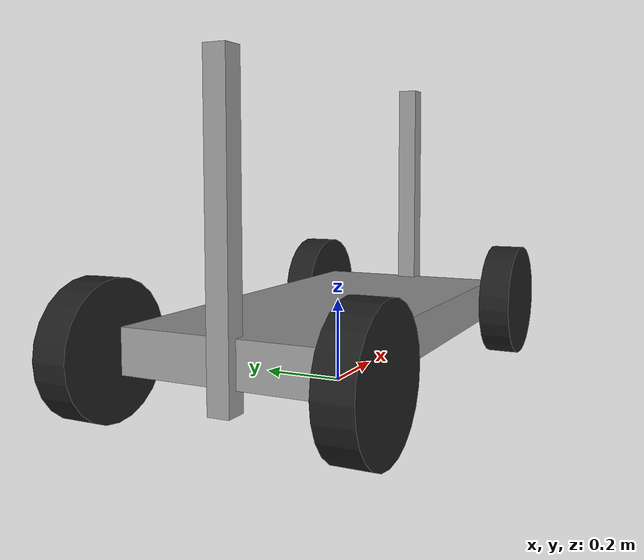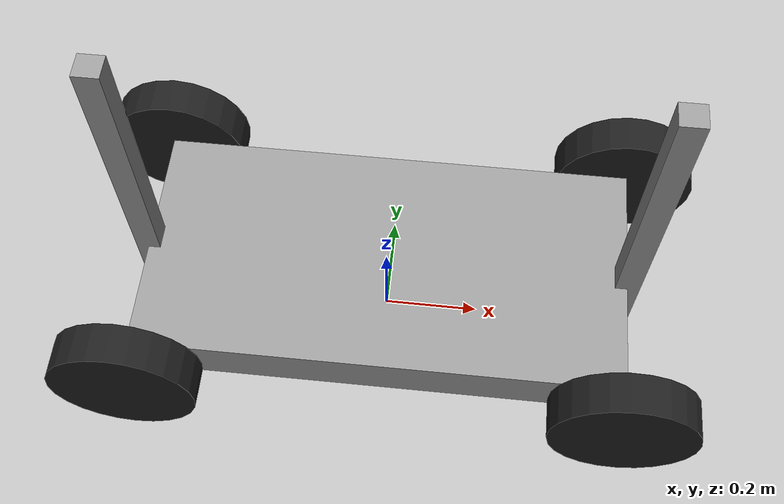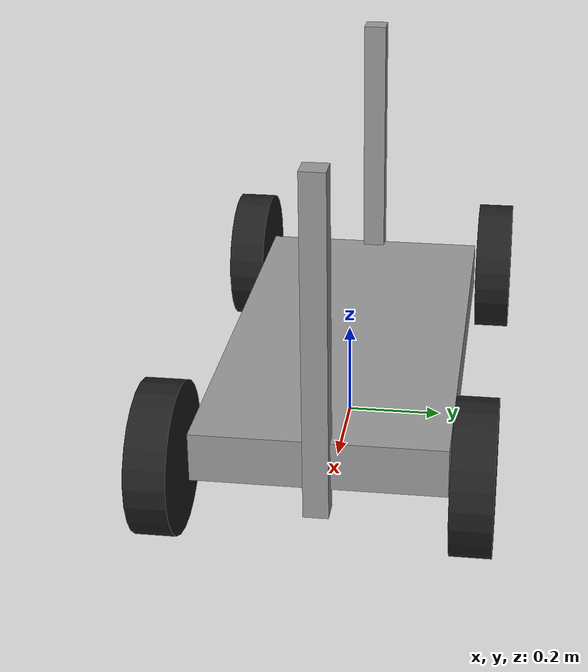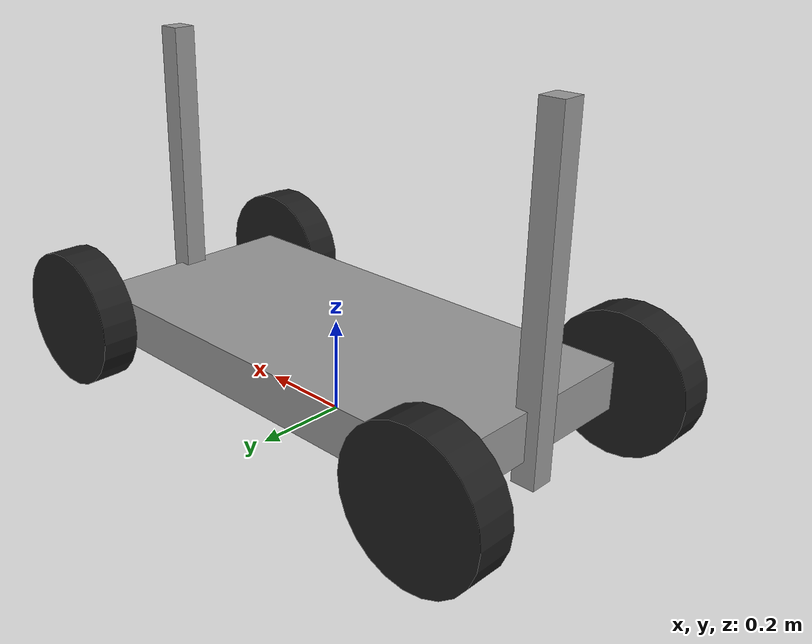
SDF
<?xml version="1.0" ?>

<sdf version="1.5">
  <model name="cart_front_steer">
    <link name="chassis">
      <pose>0 0 0.15  0 0 0</pose>
      <inertial>
        <pose>0.1 0 0  0 0 0</pose>
        <mass>10</mass>
        <inertia>
          <ixx>0.21666666666666667</ixx>
          <iyy>0.8416666666666667</iyy>
          <izz>1.0416666666666667</izz>
          <ixy>0</ixy>
          <ixz>0</ixz>
          <iyz>0</iyz>
        </inertia>
      </inertial>
      <collision name="collision">
        <geometry>
          <box>
            <size>1.0 0.5 0.1</size>
          </box>
        </geometry>
      </collision>
      <visual name="visual">
        <geometry>
          <box>
            <size>1.0 0.5 0.1</size>
          </box>
        </geometry>
        <material>
          <script>
            <uri>file://media/materials/scripts/gazebo.material</uri>
            <name>Gazebo/Grey</name>
          </script>
        </material>
      </visual>
    </link>

    <link name="rod">
      <pose>0.5 0.0 0.4  0 0 0 </pose>
      <inertial>
        <mass>2</mass>
        <inertia>
          <ixx> 0.08208333333333</ixx>
          <iyy> 0.08208333333333/</iyy>
          <izz> 0.00083333333333</izz>
          <ixy>0</ixy>
          <ixz>0</ixz>
          <iyz>0</iyz>
        </inertia>
      </inertial>
      <collision name="collision">
        <geometry>
          <box>
            <size> 0.05 0.05 0.7 </size>
          </box>
        </geometry>
      </collision>
      <visual name="visual">
        <geometry>
          <box>
            <size> 0.05 0.05 0.7 </size>
          </box>
        </geometry>
        <material>
          <script>
            <uri>file://media/materials/scripts/gazebo.material</uri>
            <name>Gazebo/Grey</name>
          </script>
        </material>
      </visual>
    </link>

    <joint name="rod_to_chassis" type="fixed">
      <parent>chassis</parent>
      <child>rod</child>
    </joint>

    <!-- second rod -->

    <link name="second_rod">
      <pose>-0.5 0.0 0.4  0 0 0 </pose>
      <inertial>
        <mass>2</mass>
        <inertia>
          <ixx> 0.08208333333333</ixx>
          <iyy> 0.08208333333333/</iyy>
          <izz> 0.00083333333333</izz>
          <ixy>0</ixy>
          <ixz>0</ixz>
          <iyz>0</iyz>
        </inertia>
      </inertial>
      <collision name="collision">
        <geometry>
          <box>
            <size> 0.05 0.05 0.7 </size>
          </box>
        </geometry>
      </collision>
      <visual name="visual">
        <geometry>
          <box>
            <size> 0.05 0.05 0.7 </size>
          </box>
        </geometry>
        <material>
          <script>
            <uri>file://media/materials/scripts/gazebo.material</uri>
            <name>Gazebo/Grey</name>
          </script>
        </material>
      </visual>
    </link>

    <joint name="second_rod_to_chassis" type="fixed">
      <parent>chassis</parent>
      <child>second_rod</child>
    </joint>

    <link name="wheel_front_left">
      <pose>0.5 0.298 0.15  -1.5707963267948966 -0.08726646259971647 0</pose>
      <inertial>
        <mass>0.5</mass>
        <inertia>
          <ixx>0.0030791666666666667</ixx>
          <iyy>0.0030791666666666667</iyy>
          <izz>0.005625</izz>
          <ixy>0</ixy>
          <ixz>0</ixz>
          <iyz>0</iyz>
        </inertia>
      </inertial>
      <collision name="collision">
        <geometry>
          <cylinder>
            <radius>0.15</radius>
            <length>0.08</length>
          </cylinder>
        </geometry>
        <surface>
          <friction>
            <ode>
              <mu>1.0</mu>
              <mu2>1.0</mu2>
              <fdir1>0 0 1</fdir1>
              <slip1>0.0</slip1>
              <slip2>0.0</slip2>
            </ode>
          </friction>
        </surface>
      </collision>
      <visual name="visual">
        <geometry>
          <cylinder>
            <radius>0.15</radius>
            <length>0.08</length>
          </cylinder>
        </geometry>
        <material>
          <script>
            <uri>file://media/materials/scripts/gazebo.material</uri>
            <name>Gazebo/Black</name>
          </script>
        </material>
      </visual>
    </link>

    <joint name="wheel_front_left_steer_spin" type="universal">
      <parent>chassis</parent>
      <child>wheel_front_left</child>
      <axis>
        <xyz>0 -1 0</xyz>
        <limit>
          <lower>-0.6108652381980153</lower>
          <upper>0.6108652381980153</upper>
        </limit>
      </axis>
      <axis2>
        <xyz>0 0 1</xyz>
      </axis2>
      <dynamics damping="0.7" friction="500.0" />
    </joint>

    <link name="wheel_front_right">
      <pose>0.5 -0.298 0.15  -1.5707963267948966 -0.08726646259971647 0</pose>
      <inertial>
        <mass>0.5</mass>
        <inertia>
          <ixx>0.0030791666666666667</ixx>
          <iyy>0.0030791666666666667</iyy>
          <izz>0.005625</izz>
          <ixy>0</ixy>
          <ixz>0</ixz>
          <iyz>0</iyz>
        </inertia>
      </inertial>
      <collision name="collision">
        <geometry>
          <cylinder>
            <radius>0.15</radius>
            <length>0.08</length>
          </cylinder>
        </geometry>
        <surface>
          <friction>
            <ode>
              <mu>1.0</mu>
              <mu2>1.0</mu2>
              <fdir1>0 0 1</fdir1>
              <slip1>0.0</slip1>
              <slip2>0.0</slip2>
            </ode>
          </friction>
        </surface>
      </collision>
      <visual name="visual">
        <geometry>
          <cylinder>
            <radius>0.15</radius>
            <length>0.08</length>
          </cylinder>
        </geometry>
        <material>
          <script>
            <uri>file://media/materials/scripts/gazebo.material</uri>
            <name>Gazebo/Black</name>
          </script>
        </material>
      </visual>
    </link>

    <joint name="wheel_front_right_steer_spin" type="universal">
      <parent>chassis</parent>
      <child>wheel_front_right</child>
      <axis>
        <xyz>0 -1 0</xyz>
        <limit>
          <lower>-0.6108652381980153</lower>
          <upper>0.6108652381980153</upper>
        </limit>
      </axis>
      <axis2>
        <xyz>0 0 1</xyz>
      </axis2>

      <dynamics damping="0.7" friction="500.0" />
    </joint>

    <link name="wheel_rear_left">
      <pose>-0.5 0.298 0.15  -1.5707963267948966 0 0</pose>
      <inertial>
        <mass>0.5</mass>
        <inertia>
          <ixx>0.0030791666666666667</ixx>
          <iyy>0.0030791666666666667</iyy>
          <izz>0.005625</izz>
          <ixy>0</ixy>
          <ixz>0</ixz>
          <iyz>0</iyz>
        </inertia>
      </inertial>
      <collision name="collision">
        <geometry>
          <cylinder>
            <radius>0.15</radius>
            <length>0.08</length>
          </cylinder>
        </geometry>
        <surface>
          <friction>
            <ode>
              <mu>1.0</mu>
              <mu2>1.0</mu2>
              <fdir1>0 0 1</fdir1>
              <slip1>0.0</slip1>
              <slip2>0.0</slip2>
            </ode>
          </friction>
        </surface>
      </collision>
      <visual name="visual">
        <geometry>
          <cylinder>
            <radius>0.15</radius>
            <length>0.08</length>
          </cylinder>
        </geometry>
        <material>
          <script>
            <uri>file://media/materials/scripts/gazebo.material</uri>
            <name>Gazebo/Black</name>
          </script>
        </material>
      </visual>
    </link>
    <joint name="wheel_rear_left_spin" type="revolute">
      <parent>chassis</parent>
      <child>wheel_rear_left</child>
      <axis>
        <xyz>0 0 1</xyz>
      </axis>
      <dynamics damping="0.7" friction="500.0" />
    </joint>

    <link name="wheel_rear_right">
      <pose>-0.5 -0.298 0.15  -1.5707963267948966 0 0</pose>
      <inertial>
        <mass>0.5</mass>
        <inertia>
          <ixx>0.0030791666666666667</ixx>
          <iyy>0.0030791666666666667</iyy>
          <izz>0.005625</izz>
          <ixy>0</ixy>
          <ixz>0</ixz>
          <iyz>0</iyz>
        </inertia>
      </inertial>
      <collision name="collision">
        <geometry>
          <cylinder>
            <radius>0.15</radius>
            <length>0.08</length>
          </cylinder>
        </geometry>
        <surface>
          <friction>
            <ode>
              <mu>1.0</mu>
              <mu2>1.0</mu2>
              <fdir1>0 0 1</fdir1>
              <slip1>0.0</slip1>
              <slip2>0.0</slip2>
            </ode>
          </friction>
        </surface>
      </collision>
      <visual name="visual">
        <geometry>
          <cylinder>
            <radius>0.15</radius>
            <length>0.08</length>
          </cylinder>
        </geometry>
        <material>
          <script>
            <uri>file://media/materials/scripts/gazebo.material</uri>
            <name>Gazebo/Black</name>
          </script>
        </material>
      </visual>
    </link>
    <joint name="wheel_rear_right_spin" type="revolute">
      <parent>chassis</parent>
      <child>wheel_rear_right</child>
      <axis>
        <xyz>0 0 1</xyz>
      </axis>
      <dynamics damping="0.7" friction="500.0" />
    </joint>

  </model>
</sdf>
